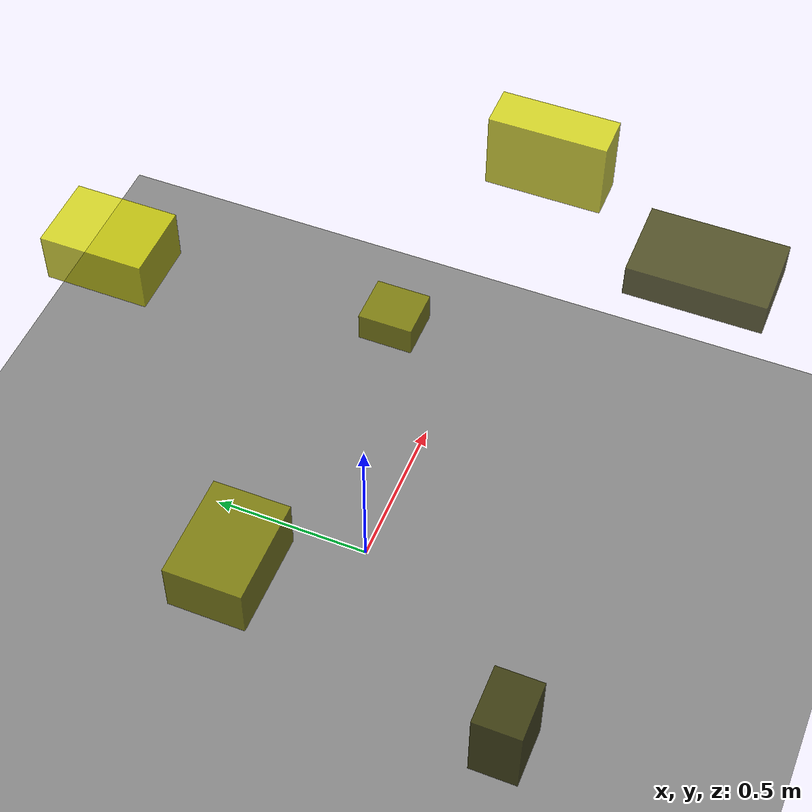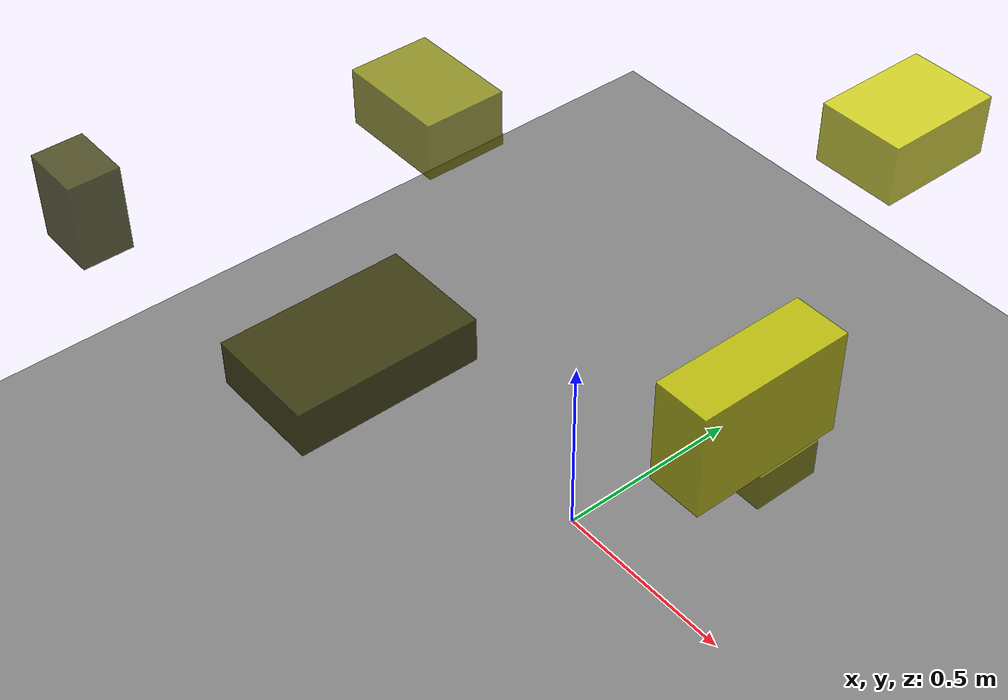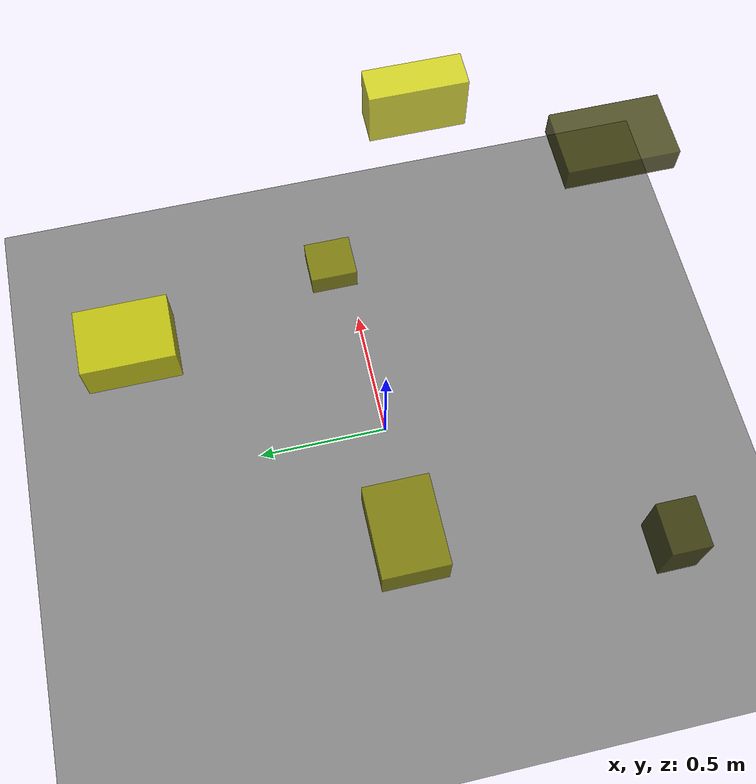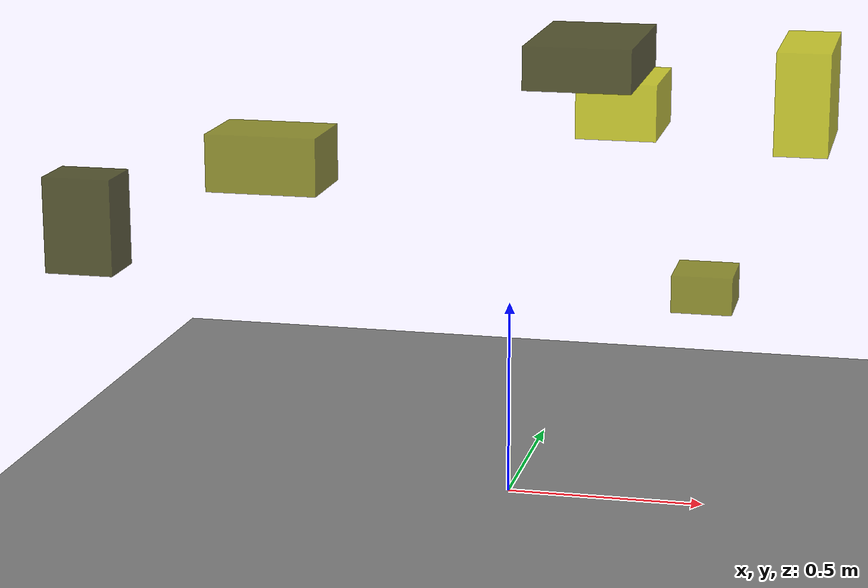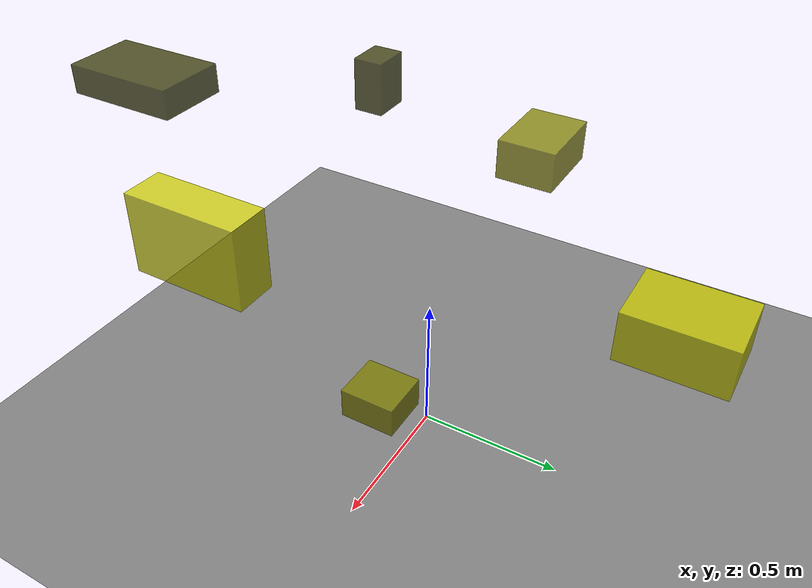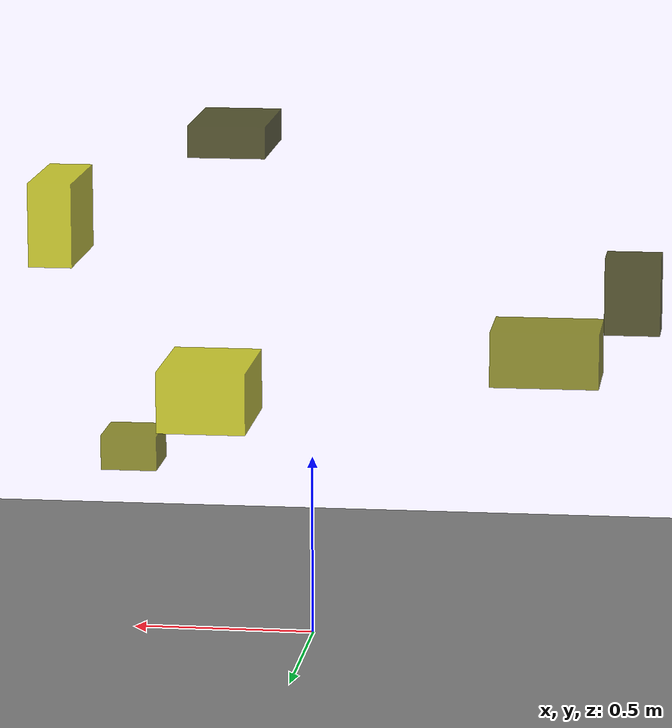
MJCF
<?xml version="1.0"?>
<mujoco model="obstacle_scene">
  <compiler angle="radian" coordinate="local"/>
  <option timestep="0.001" gravity="0 0 -9.81"/>

  <asset>
    <material name="obstacle_mat" rgba="0.8 0.8 0.0 0.8"/>
    <material name="ground_mat" rgba="0.5 0.5 0.5 1"/>
  </asset>

  <worldbody>
    <!-- Ground plane -->
    <geom name="ground" type="plane" size="3 3 0.1" material="ground_mat"/>

    <!-- Obstacles -->
    <body name="obstacle_0" pos="0.327878 -0.806560 1.267752">
      <geom name="obs_0" type="box" size="0.112309 0.180956 0.045533" rgba="0.2 0.2 0.0 0.8"/>
    </body>
    <body name="obstacle_1" pos="-0.647826 0.089306 0.827569">
      <geom name="obs_1" type="box" size="0.146493 0.107293 0.075234" rgba="0.5 0.5 0.0 0.8"/>
    </body>
    <body name="obstacle_2" pos="0.743796 -0.264118 1.112705">
      <geom name="obs_2" type="box" size="0.060972 0.169771 0.117171" rgba="0.8 0.8 0.0 0.8"/>
    </body>
    <body name="obstacle_3" pos="-0.841695 -0.720330 0.834447">
      <geom name="obs_3" type="box" size="0.080298 0.063277 0.111337" rgba="0.2 0.2 0.0 0.8"/>
    </body>
    <body name="obstacle_4" pos="0.481247 0.102293 0.541719">
      <geom name="obs_4" type="box" size="0.076425 0.083818 0.047506" rgba="0.5 0.5 0.0 0.8"/>
    </body>
    <body name="obstacle_5" pos="0.157627 0.839247 0.870131">
      <geom name="obs_5" type="box" size="0.112677 0.154945 0.078478" rgba="0.8 0.8 0.0 0.8"/>
    </body>
  </worldbody>
</mujoco>
